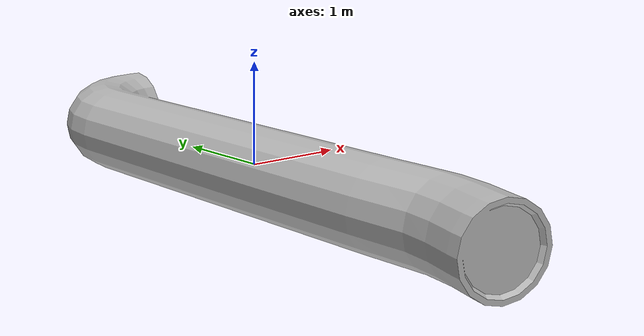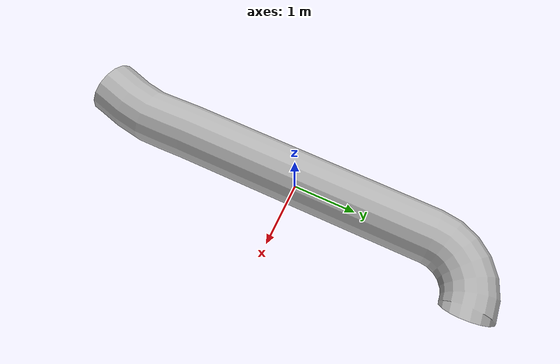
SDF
<?xml version='1.0' ?>
<sdf version='1.6'>
  <model name='Duct'>
    <static>true</static>
    <link name='link'>
      <collision name='collision'>
        <geometry>
          <mesh>
            <uri>model://Duct/meshes/Duct.dae</uri>
          </mesh>
        </geometry>
      </collision>
      <visual name='visual'>
        <geometry>
          <mesh>
            <uri>model://Duct/meshes/Duct.dae</uri>
          </mesh>
        </geometry>
      </visual>
    </link>
  </model>
</sdf>
